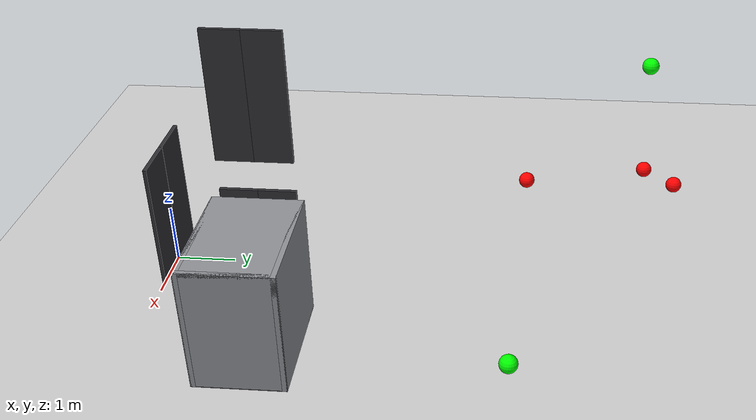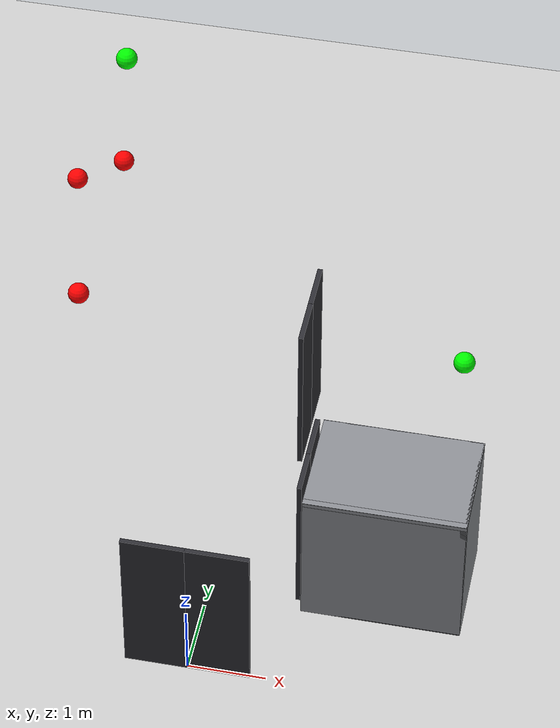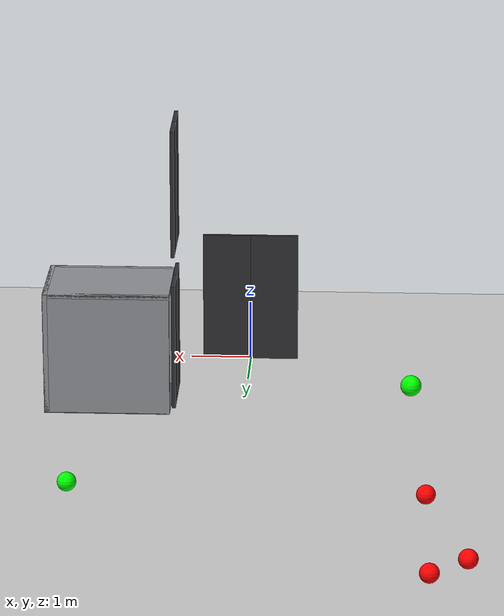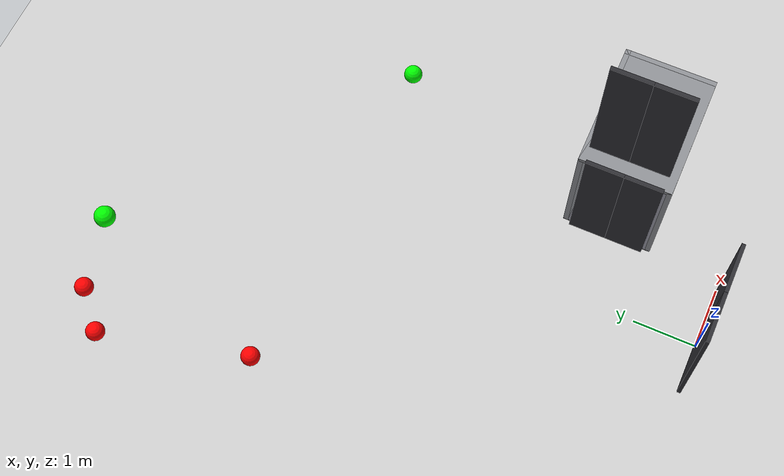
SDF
<sdf version="1.7">
 <world name="generated_lightweight_world">
  <include><uri>model://sun</uri></include>
  <include><uri>model://ground_plane</uri></include>
  <model name="dynamic_main_entrance">
   <static>false</static>
   <pose>0.0000 0.0000 1.1000 0.0000 0.0000 1.5708</pose>
   <link name="left_panel">
    <gravity>false</gravity>
    <kinematic>true</kinematic>
    <pose>0.0000 -0.4000 0.0000 0.0000 0.0000 0.0000</pose>
    <collision name="left_panel_collision">
     <geometry><box><size>0.0600 0.8000 2.2000</size></box></geometry>
    </collision>
    <visual name="left_panel_visual">
     <geometry><box><size>0.0600 0.8000 2.2000</size></box></geometry>
     <material><ambient>0.18 0.18 0.20 1</ambient><diffuse>0.18 0.18 0.20 1</diffuse></material>
    </visual>
   </link>
   <link name="right_panel">
    <gravity>false</gravity>
    <kinematic>true</kinematic>
    <pose>0.0000 0.4000 0.0000 0.0000 0.0000 0.0000</pose>
    <collision name="right_panel_collision">
     <geometry><box><size>0.0600 0.8000 2.2000</size></box></geometry>
    </collision>
    <visual name="right_panel_visual">
     <geometry><box><size>0.0600 0.8000 2.2000</size></box></geometry>
     <material><ambient>0.18 0.18 0.20 1</ambient><diffuse>0.18 0.18 0.20 1</diffuse></material>
    </visual>
   </link>
  </model>
  <model name="dynamic_elevator_floor_0">
   <static>false</static>
   <pose>1.1500 1.9000 1.1000 0.0000 0.0000 3.1416</pose>
   <link name="left_panel">
    <gravity>false</gravity>
    <kinematic>true</kinematic>
    <pose>0.0000 -0.3000 0.0000 0.0000 0.0000 0.0000</pose>
    <collision name="left_panel_collision">
     <geometry><box><size>0.0600 0.6000 2.1000</size></box></geometry>
    </collision>
    <visual name="left_panel_visual">
     <geometry><box><size>0.0600 0.6000 2.1000</size></box></geometry>
     <material><ambient>0.18 0.18 0.20 1</ambient><diffuse>0.18 0.18 0.20 1</diffuse></material>
    </visual>
   </link>
   <link name="right_panel">
    <gravity>false</gravity>
    <kinematic>true</kinematic>
    <pose>0.0000 0.3000 0.0000 0.0000 0.0000 0.0000</pose>
    <collision name="right_panel_collision">
     <geometry><box><size>0.0600 0.6000 2.1000</size></box></geometry>
    </collision>
    <visual name="right_panel_visual">
     <geometry><box><size>0.0600 0.6000 2.1000</size></box></geometry>
     <material><ambient>0.18 0.18 0.20 1</ambient><diffuse>0.18 0.18 0.20 1</diffuse></material>
    </visual>
   </link>
  </model>
  <model name="dynamic_elevator_floor_1">
   <static>false</static>
   <pose>1.1500 1.9000 3.7000 0.0000 0.0000 3.1416</pose>
   <link name="left_panel">
    <gravity>false</gravity>
    <kinematic>true</kinematic>
    <pose>0.0000 -0.3000 0.0000 0.0000 0.0000 0.0000</pose>
    <collision name="left_panel_collision">
     <geometry><box><size>0.0600 0.6000 2.1000</size></box></geometry>
    </collision>
    <visual name="left_panel_visual">
     <geometry><box><size>0.0600 0.6000 2.1000</size></box></geometry>
     <material><ambient>0.18 0.18 0.20 1</ambient><diffuse>0.18 0.18 0.20 1</diffuse></material>
    </visual>
   </link>
   <link name="right_panel">
    <gravity>false</gravity>
    <kinematic>true</kinematic>
    <pose>0.0000 0.3000 0.0000 0.0000 0.0000 0.0000</pose>
    <collision name="right_panel_collision">
     <geometry><box><size>0.0600 0.6000 2.1000</size></box></geometry>
    </collision>
    <visual name="right_panel_visual">
     <geometry><box><size>0.0600 0.6000 2.1000</size></box></geometry>
     <material><ambient>0.18 0.18 0.20 1</ambient><diffuse>0.18 0.18 0.20 1</diffuse></material>
    </visual>
   </link>
  </model>
  <model name="dynamic_elevator_main">
   <static>false</static>
   <pose>2.2350 1.9000 0.9550 0.0000 0.0000 -1.5708</pose>
   <link name="car">
    <gravity>false</gravity>
    <kinematic>true</kinematic>
    <collision name="car_floor_collision">
     <pose>0.0000 0.0000 -1.0150 0.0000 0.0000 0.0000</pose>
     <geometry><box><size>1.4500 2.0500 0.1200</size></box></geometry>
    </collision>
    <visual name="car_floor_visual">
     <pose>0.0000 0.0000 -1.0150 0.0000 0.0000 0.0000</pose>
     <geometry><box><size>1.4500 2.0500 0.1200</size></box></geometry>
     <material><ambient>0.32 0.32 0.35 1</ambient><diffuse>0.32 0.32 0.35 1</diffuse></material>
    </visual>
    <collision name="back_collision">
     <pose>0.0000 0.9850 0.0000 0.0000 0.0000 0.0000</pose>
     <geometry><box><size>1.4500 0.0800 2.1500</size></box></geometry>
    </collision>
    <visual name="back_visual">
     <pose>0.0000 0.9850 0.0000 0.0000 0.0000 0.0000</pose>
     <geometry><box><size>1.4500 0.0800 2.1500</size></box></geometry>
     <material><ambient>0.55 0.56 0.58 1</ambient><diffuse>0.55 0.56 0.58 1</diffuse></material>
    </visual>
    <collision name="left_collision">
     <pose>-0.6850 0.0000 0.0000 0.0000 0.0000 0.0000</pose>
     <geometry><box><size>0.0800 2.0500 2.1500</size></box></geometry>
    </collision>
    <visual name="left_visual">
     <pose>-0.6850 0.0000 0.0000 0.0000 0.0000 0.0000</pose>
     <geometry><box><size>0.0800 2.0500 2.1500</size></box></geometry>
     <material><ambient>0.55 0.56 0.58 1</ambient><diffuse>0.55 0.56 0.58 1</diffuse></material>
    </visual>
    <collision name="right_collision">
     <pose>0.6850 0.0000 0.0000 0.0000 0.0000 0.0000</pose>
     <geometry><box><size>0.0800 2.0500 2.1500</size></box></geometry>
    </collision>
    <visual name="right_visual">
     <pose>0.6850 0.0000 0.0000 0.0000 0.0000 0.0000</pose>
     <geometry><box><size>0.0800 2.0500 2.1500</size></box></geometry>
     <material><ambient>0.55 0.56 0.58 1</ambient><diffuse>0.55 0.56 0.58 1</diffuse></material>
    </visual>
    <collision name="top_collision">
     <pose>0.0000 0.0000 1.0450 0.0000 0.0000 0.0000</pose>
     <geometry><box><size>1.4500 2.0500 0.0600</size></box></geometry>
    </collision>
    <visual name="top_visual">
     <pose>0.0000 0.0000 1.0450 0.0000 0.0000 0.0000</pose>
     <geometry><box><size>1.4500 2.0500 0.0600</size></box></geometry>
     <material><ambient>0.55 0.56 0.58 1</ambient><diffuse>0.55 0.56 0.58 1</diffuse></material>
    </visual>
   </link>
  </model>
  <model name="danger_red_sphere_00">
   <static>true</static>
   <pose>-2.934672 6.100811 0.150000 0.000000 0.000000 0.000000</pose>
   <link name="link">
    <collision name="collision"><geometry><sphere><radius>0.150</radius></sphere></geometry></collision>
    <visual name="visual">
     <geometry><sphere><radius>0.150</radius></sphere></geometry>
     <material><ambient>1.0 0.0 0.0 1.0</ambient><diffuse>1.0 0.0 0.0 1.0</diffuse></material>
    </visual>
   </link>
  </model>
  <model name="danger_red_sphere_01">
   <static>true</static>
   <pose>-3.534382 8.435978 0.150000 0.000000 0.000000 0.000000</pose>
   <link name="link">
    <collision name="collision"><geometry><sphere><radius>0.150</radius></sphere></geometry></collision>
    <visual name="visual">
     <geometry><sphere><radius>0.150</radius></sphere></geometry>
     <material><ambient>1.0 0.0 0.0 1.0</ambient><diffuse>1.0 0.0 0.0 1.0</diffuse></material>
    </visual>
   </link>
  </model>
  <model name="danger_red_sphere_02">
   <static>true</static>
   <pose>-2.963406 8.952382 0.150000 0.000000 0.000000 0.000000</pose>
   <link name="link">
    <collision name="collision"><geometry><sphere><radius>0.150</radius></sphere></geometry></collision>
    <visual name="visual">
     <geometry><sphere><radius>0.150</radius></sphere></geometry>
     <material><ambient>1.0 0.0 0.0 1.0</ambient><diffuse>1.0 0.0 0.0 1.0</diffuse></material>
    </visual>
   </link>
  </model>
  <model name="distractor_green_sphere_00">
   <static>true</static>
   <pose>-2.654315 8.198244 2.750000 0.000000 0.000000 0.000000</pose>
   <link name="link">
    <collision name="collision"><geometry><sphere><radius>0.150</radius></sphere></geometry></collision>
    <visual name="visual">
     <geometry><sphere><radius>0.150</radius></sphere></geometry>
     <material><ambient>0.0 1.0 0.0 1.0</ambient><diffuse>0.0 1.0 0.0 1.0</diffuse></material>
    </visual>
   </link>
  </model>
  <model name="distractor_green_sphere_01">
   <static>true</static>
   <pose>2.584404 5.834131 0.150000 0.000000 0.000000 0.000000</pose>
   <link name="link">
    <collision name="collision"><geometry><sphere><radius>0.150</radius></sphere></geometry></collision>
    <visual name="visual">
     <geometry><sphere><radius>0.150</radius></sphere></geometry>
     <material><ambient>0.0 1.0 0.0 1.0</ambient><diffuse>0.0 1.0 0.0 1.0</diffuse></material>
    </visual>
   </link>
  </model>
 </world>
</sdf>
